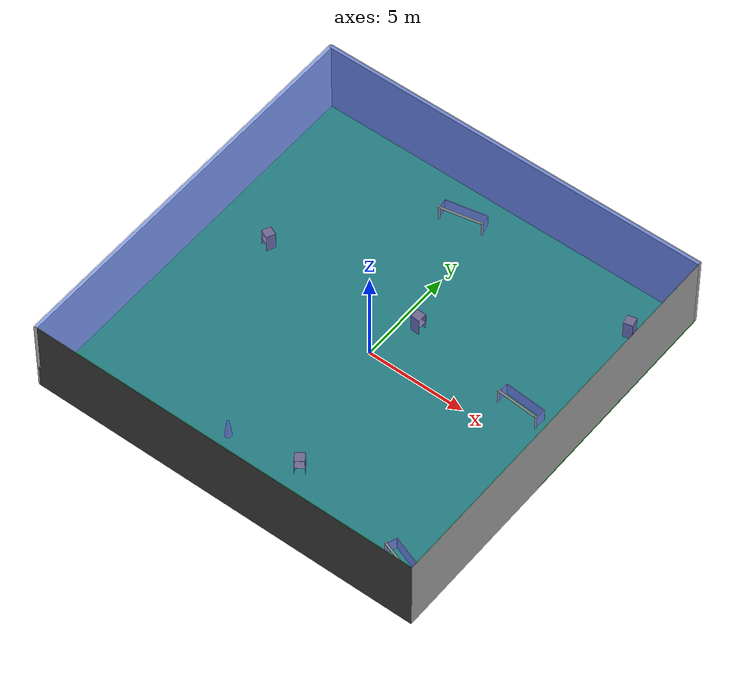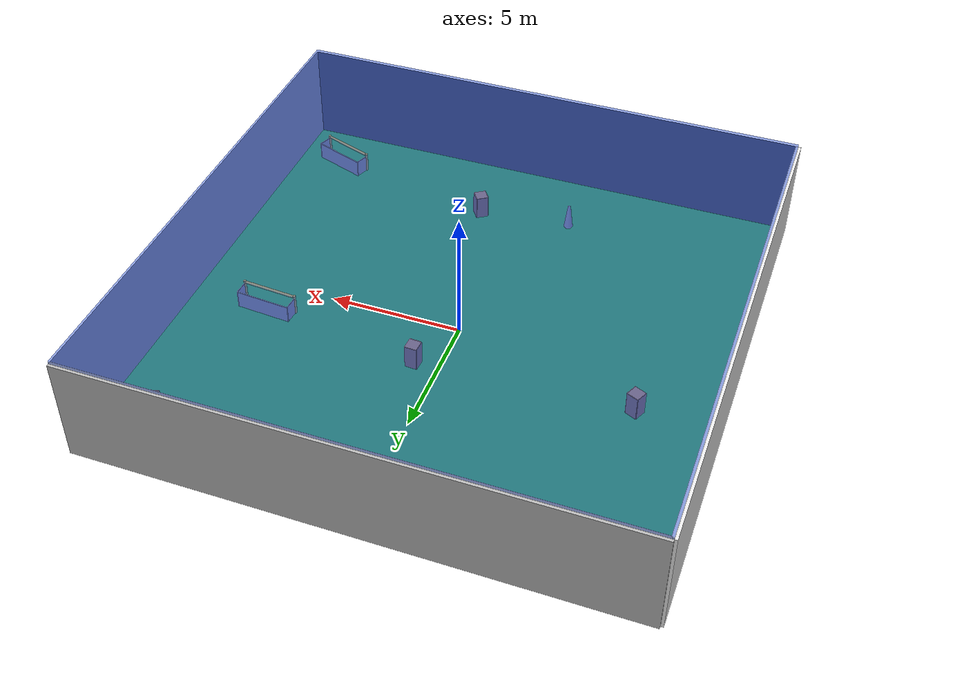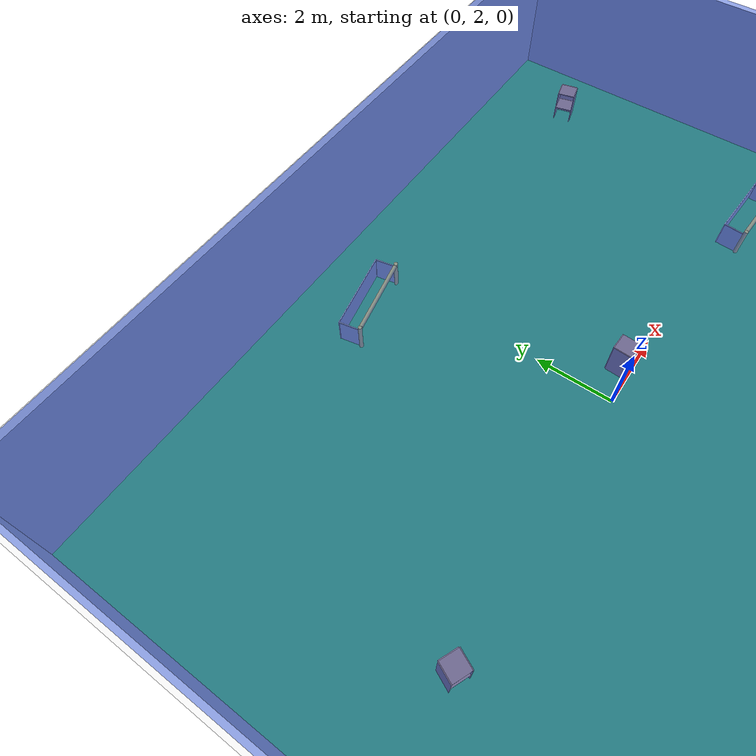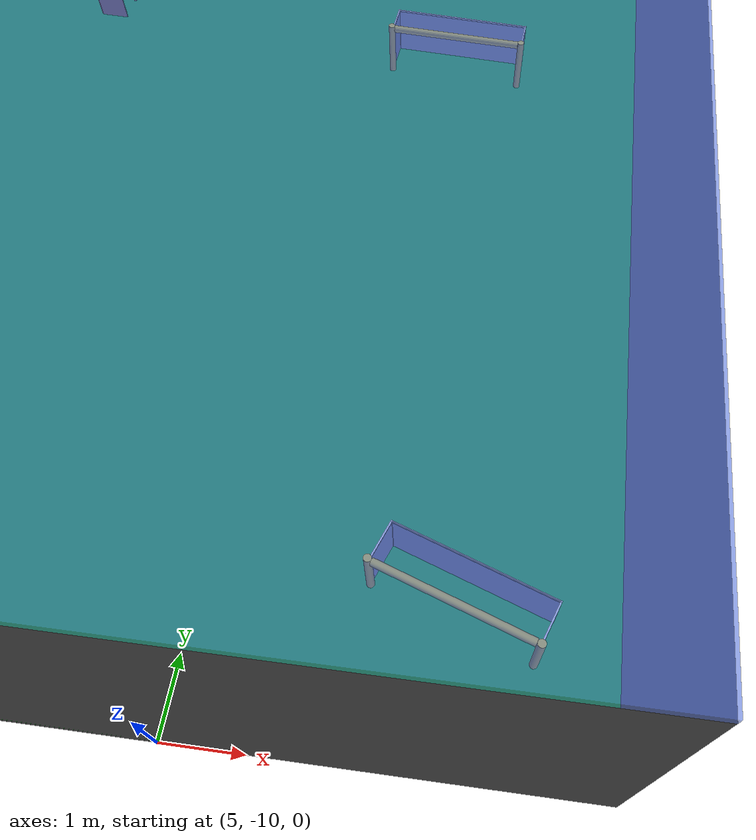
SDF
<sdf version="1.4">
 <world name="default">
  <physics type="ode">
   <max_step_size>0.001</max_step_size>
   <real_time_factor>1</real_time_factor>
   <real_time_update_rate>1000</real_time_update_rate>
   <gravity>0 0 -9.8</gravity>
  </physics>
  <scene><ambient>0.4 0.4 0.4 1</ambient><background>0.7 0.7 0.7 1</background><shadows>1</shadows></scene>
  <model name="Surrounding">
   <static>1</static>
   <link name="Ceiling">
    <collision name="Ceiling_Collision"><geometry><box><size>20 20 0.1</size></box></geometry></collision>
    <visual name="Ceiling_Visual">
     <geometry><box><size>20 20 0.1</size></box></geometry>
     <material>
      <script><uri>file://media/materials/scripts/gazebo.material</uri><name>Gazebo/BlueTransparent</name></script>
     </material>
    </visual>
    <pose>0 0 4.05 0 0 0</pose>
   </link>
   <link name="Wall_South">
    <collision name="Wall_South_Collision">
     <geometry><box><size>20 0 4</size></box></geometry>
     <pose>0 0 2 0 -0 0</pose>
    </collision>
    <visual name="Wall_South_Visual">
     <pose>0 0 2 0 -0 0</pose>
     <geometry><box><size>20 0 4</size></box></geometry>
     <material>
      <script><uri>file://media/materials/scripts/gazebo.material</uri><name>Gazebo/DarkGrey</name></script>
     </material>
    </visual>
    <velocity_decay><linear>0</linear><angular>0</angular></velocity_decay>
    <pose>0 -10 0 0 -0 0</pose>
   </link>
   <link name="Wall_East">
    <collision name="Wall_21_Collision">
     <geometry><box><size>20 0 4</size></box></geometry>
     <pose>0 0 2 0 -0 0</pose>
    </collision>
    <visual name="Wall_21_Visual">
     <pose>0 0 2 0 -0 0</pose>
     <geometry><box><size>20 0 4</size></box></geometry>
     <material>
      <script><uri>file://media/materials/scripts/gazebo.material</uri><name>Gazebo/Pioneer2Body</name></script>
     </material>
    </visual>
    <velocity_decay><linear>0</linear><angular>0</angular></velocity_decay>
    <pose>10 0 0 0 -0 1.5708</pose>
   </link>
   <link name="Wall_North">
    <collision name="Wall_22_Collision">
     <geometry><box><size>20 0.2 4</size></box></geometry>
     <pose>0 0 2 0 -0 0</pose>
    </collision>
    <visual name="Wall_22_Visual">
     <pose>0 0 2 0 -0 0</pose>
     <geometry><box><size>20 0.2 4</size></box></geometry>
     <material>
      <script><uri>file://media/materials/scripts/gazebo.material</uri><name>Gazebo/JointAnchor</name></script>
     </material>
    </visual>
    <velocity_decay><linear>0</linear><angular>0</angular></velocity_decay>
    <pose>0 10 0 0 -0 0</pose>
   </link>
   <link name="Wall_West">
    <collision name="Wall_23_Collision">
     <geometry><box><size>20 0.2 4</size></box></geometry>
     <pose>0 0 2 0 -0 0</pose>
    </collision>
    <visual name="Wall_23_Visual">
     <pose>0 0 2 0 -0 0</pose>
     <geometry><box><size>20 0.2 4</size></box></geometry>
     <material>
      <script><uri>file://media/materials/scripts/gazebo.material</uri><name>Gazebo/White</name></script>
     </material>
    </visual>
    <velocity_decay><linear>0</linear><angular>0</angular></velocity_decay>
    <pose>-10 0 0 0 0 -1.5708</pose>
   </link>
   <link name="Ground_link">
    <collision name="collision">
     <pose>0 0 .05 0 -0 0</pose>
     <geometry><box><size>20 20 0.1</size></box></geometry>
    </collision>
    <visual name="visual">
     <pose>0 0 .05 0 -0 0</pose>
     <geometry><box><size>20 20 0.1</size></box></geometry>
     <material>
      <script><uri>file://media/materials/scripts/gazebo.material</uri><name>Gazebo/Green</name></script>
     </material>
    </visual>
   </link>
   <static>1</static>
  </model>
  <spherical_coordinates>
   <surface_model>EARTH_WGS84</surface_model>
   <latitude_deg>0</latitude_deg>
   <longitude_deg>0</longitude_deg>
   <elevation>0</elevation>
   <heading_deg>0</heading_deg>
  </spherical_coordinates>
  <light name="lightball_0" type="diffuse">
   <diffuse>0.8 0.8 0.8 1</diffuse>
   <specular>0.2 0.2 0.2 1</specular>
   <attenuation>
    <range>100</range>
    <constant>0.7</constant>
    <linear>0.01</linear>
    <quadratic>0.001</quadratic>
   </attenuation>
   <direction>-0.5 0.1 -0.9</direction>
   <pose>-0.653390411847 5.2201653458 1.72201596063 0 0 0</pose>
  </light>
  <light name="lightball_1" type="diffuse">
   <diffuse>0.8 0.8 0.8 1</diffuse>
   <specular>0.2 0.2 0.2 1</specular>
   <attenuation>
    <range>100</range>
    <constant>0.7</constant>
    <linear>0.01</linear>
    <quadratic>0.001</quadratic>
   </attenuation>
   <direction>-0.5 0.1 -0.9</direction>
   <pose>6.70211199674 -1.42293500251 3.33897687136 0 0 0</pose>
  </light>
  <light name="lightball_2" type="diffuse">
   <diffuse>0.8 0.8 0.8 1</diffuse>
   <specular>0.2 0.2 0.2 1</specular>
   <attenuation>
    <range>100</range>
    <constant>0.7</constant>
    <linear>0.01</linear>
    <quadratic>0.001</quadratic>
   </attenuation>
   <direction>-0.5 0.1 -0.9</direction>
   <pose>-7.46891011723 8.26719841564 2.37260738618 0 0 0</pose>
  </light>
  <light name="lightball_3" type="diffuse">
   <diffuse>0.8 0.8 0.8 1</diffuse>
   <specular>0.2 0.2 0.2 1</specular>
   <attenuation>
    <range>100</range>
    <constant>0.7</constant>
    <linear>0.01</linear>
    <quadratic>0.001</quadratic>
   </attenuation>
   <direction>-0.5 0.1 -0.9</direction>
   <pose>-7.16011681598 4.49630505696 2.70316518009 0 0 0</pose>
  </light>
  <light name="lightball_4" type="diffuse">
   <diffuse>0.8 0.8 0.8 1</diffuse>
   <specular>0.2 0.2 0.2 1</specular>
   <attenuation>
    <range>100</range>
    <constant>0.7</constant>
    <linear>0.01</linear>
    <quadratic>0.001</quadratic>
   </attenuation>
   <direction>-0.5 0.1 -0.9</direction>
   <pose>-6.29234881258 -8.52376289557 3.11292873382 0 0 0</pose>
  </light>
  <include><uri>model://cabinet</uri><pose>-7.07971122715 1.90193218274 0 0 0 1.14541762377</pose></include>
  <include>
   <uri>model://construction_cone</uri>
   <pose>-1.96962829747 -7.16882373412 0 0 0 2.98884044097</pose>
  </include>
  <include>
   <uri>model://robocup_3Dsim_goal</uri>
   <pose>-1.13635631575 7.9180604141 0 0 0 1.76708629747</pose>
  </include>
  <include><uri>model://cabinet</uri><pose>1.56677903358 -6.74540952545 0 0 0 2.17697087411</pose></include>
  <include><uri>model://cabinet</uri><pose>0.879747088846 2.28489609496 0 0 0 3.08758170439</pose></include>
  <include>
   <uri>model://robocup_3Dsim_goal</uri>
   <pose>8.02318197095 -8.26397250188 0 0 0 1.22506027186</pose>
  </include>
  <include>
   <uri>model://robocup_3Dsim_goal</uri>
   <pose>6.99758600207 1.19434355625 0 0 0 1.49651116041</pose>
  </include>
  <include><uri>model://cabinet</uri><pose>8.19816455632 7.65304957554 0 0 0 0.236637398405</pose></include>
 </world>
</sdf>

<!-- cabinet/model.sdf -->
<sdf version="1.5">
  <model name="cabinet">
    <static>true</static>
    <link name="cabinet_bottom_plate">
      <inertial>
        <pose>0 0 -1 0 0 0</pose>
        <inertia>
          <ixx>2.050000</ixx>
          <ixy>0</ixy>
          <ixz>0</ixz>
          <iyy>2.050000</iyy>
          <iyz>0</iyz>
          <izz>2.050000</izz>
        </inertia>
        <mass>25.000000</mass>
      </inertial>
      <collision name="cabinet_bottom_plate_geom">
        <pose>0 0 0.010000 0 0 0</pose>
        <geometry>
          <box>
            <size>0.450000 0.450000 0.020000</size>
          </box>
        </geometry>
      </collision>
      <visual name="cabinet_bottom_plate_geom_visual">
        <pose>0 0 0.010000 0 0 0</pose>
        <geometry>
          <box>
            <size>0.450000 0.450000 0.020000</size>
          </box>
        </geometry>
        <material>
          <script>
            <uri>model://media/materials/scripts/gazebo.material</uri>
            <name>Gazebo/Wood</name>
          </script>
        </material>
      </visual>
      <collision name="cabinet_bottom_plate_geom_cabinet_back_plate">
        <pose>0.235000 0 0.510000 0 0 0</pose>
        <geometry>
          <box>
            <size>0.020000 0.450000 1.020000</size>
          </box>
        </geometry>
      </collision>
      <visual name="cabinet_bottom_plate_geom_cabinet_back_plate_visual">
        <pose>0.235000 0 0.510000 0 0 0</pose>
        <geometry>
          <box>
            <size>0.020000 0.450000 1.020000</size>
          </box>
        </geometry>
        <material>
          <script>
            <uri>model://media/materials/scripts/gazebo.material</uri>
            <name>Gazebo/Wood</name>
          </script>
        </material>
      </visual>
      <collision name="cabinet_bottom_plate_geom_cabinet_left_plate">
        <pose>0 0.235000 0.510000 0 0 0</pose>
        <geometry>
          <box>
            <size>0.450000 0.020000 1.020000</size>
          </box>
        </geometry>
      </collision>
      <visual name="cabinet_bottom_plate_geom_cabinet_left_plate_visual">
        <pose>0 0.235000 0.510000 0 0 0</pose>
        <geometry>
          <box>
            <size>0.450000 0.020000 1.020000</size>
          </box>
        </geometry>
        <material>
          <script>
            <uri>model://media/materials/scripts/gazebo.material</uri>
            <name>Gazebo/Wood</name>
          </script>
        </material>
      </visual>
      <collision name="cabinet_bottom_plate_geom_cabinet_middle_plate">
        <pose>0 0 0.510000 0 0 0</pose>
        <geometry>
          <box>
            <size>0.450000 0.450000 0.020000</size>
          </box>
        </geometry>
      </collision>
      <visual name="cabinet_bottom_plate_geom_cabinet_middle_plate_visual">
        <pose>0 0 0.510000 0 0 0</pose>
        <geometry>
          <box>
            <size>0.450000 0.450000 0.020000</size>
          </box>
        </geometry>
        <material>
          <script>
            <uri>model://media/materials/scripts/gazebo.material</uri>
            <name>Gazebo/Wood</name>
          </script>
        </material>
      </visual>
      <collision name="cabinet_bottom_plate_geom_cabinet_right_plate">
        <pose>0 -0.235000 0.510000 0 0 0</pose>
        <geometry>
          <box>
            <size>0.450000 0.020000 1.020000</size>
          </box>
        </geometry>
      </collision>
      <visual name="cabinet_bottom_plate_geom_cabinet_right_plate_visual">
        <pose>0 -0.235000 0.510000 0 0 0</pose>
        <geometry>
          <box>
            <size>0.450000 0.020000 1.020000</size>
          </box>
        </geometry>
        <material>
          <script>
            <uri>model://media/materials/scripts/gazebo.material</uri>
            <name>Gazebo/Wood</name>
          </script>
        </material>
      </visual>
      <collision name="cabinet_bottom_plate_geom_cabinet_top_plate">
        <pose>0 0 1.010000 0 0 0</pose>
        <geometry>
          <box>
            <size>0.450000 0.450000 0.020000</size>
          </box>
        </geometry>
      </collision>
      <visual name="cabinet_bottom_plate_geom_cabinet_top_plate_visual">
        <pose>0 0 1.010000 0 0 0</pose>
        <geometry>
          <box>
            <size>0.450000 0.450000 0.020000</size>
          </box>
        </geometry>
        <material>
          <script>
            <uri>model://media/materials/scripts/gazebo.material</uri>
            <name>Gazebo/Wood</name>
          </script>
        </material>
      </visual>
    </link>
  </model>
</sdf>

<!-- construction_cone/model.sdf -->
<sdf version="1.5">
  <model name="Construction Cone">
    <link name="link">
      <collision name="collision">
        <geometry>
          <mesh>
            <scale>10 10 10</scale>
            <uri>file://isr-testbed/construction_cone/meshes/construction_cone.dae</uri>
          </mesh>
        </geometry>
      </collision>
      <visual name="visual">
        <geometry>
          <mesh>
            <scale>10 10 10</scale>
            <uri>file://isr-testbed/construction_cone/meshes/construction_cone.dae</uri>
          </mesh>
        </geometry>
      </visual>
    </link>
  </model>
</sdf>

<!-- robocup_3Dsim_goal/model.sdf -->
<sdf version="1.5">
  <model name="robocup_3d_goal">
    <static>true</static>
    <link name="left_post">
      <pose>0 1.05 0.45 0 0 0</pose>
      <collision name="collision">
        <geometry>
          <cylinder>
            <radius>0.05</radius>
            <length>0.9</length>
          </cylinder>
        </geometry>
      </collision>
      <visual name="visual">
        <geometry>
          <cylinder>
            <radius>0.05</radius>
            <length>0.9</length>
          </cylinder>
        </geometry>
        <material>
          <script>
            <uri>file://media/materials/scripts/gazebo.material</uri>
            <name>Gazebo/ZincYellow</name>
          </script>
        </material>
      </visual>
    </link>
    <link name="left_support_horiz_lower">
      <pose>0.30 1.05 0.01 0 0 0</pose>
      <collision name="collision">
        <geometry>
          <box>
            <size>0.50 0.02 0.02</size>
          </box>
        </geometry>
      </collision>
      <visual name="visual">
        <geometry>
          <box>
            <size>0.50 0.02 0.02</size>
          </box>
        </geometry>
        <material>
          <script>
            <uri>file://media/materials/scripts/gazebo.material</uri>
            <name>Gazebo/White</name>
          </script>
        </material>
      </visual>
    </link>
    <link name="left_support_horiz_upper">
      <pose>0.30 1.05 0.79 0 0 0</pose>
      <collision name="collision">
        <geometry>
          <box>
            <size>0.50 0.02 0.02</size>
          </box>
        </geometry>
      </collision>
      <visual name="visual">
        <geometry>
          <box>
            <size>0.50 0.02 0.02</size>
          </box>
        </geometry>
        <material>
          <script>
            <uri>file://media/materials/scripts/gazebo.material</uri>
            <name>Gazebo/White</name>
          </script>
        </material>
      </visual>
    </link>
    <link name="left_support_vertical">
      <pose>0.56 1.05 0.4 0 1.5708 0</pose>
      <collision name="collision">
        <geometry>
          <box>
            <size>0.80 0.02 0.02</size>
          </box>
        </geometry>
      </collision>
      <visual name="visual">
        <geometry>
          <box>
            <size>0.80 0.02 0.02</size>
          </box>
        </geometry>
        <material>
          <script>
            <uri>file://media/materials/scripts/gazebo.material</uri>
            <name>Gazebo/White</name>
          </script>
        </material>
      </visual>
    </link>
    <link name="right_support_horiz_lower">
      <pose>0.30 -1.05 0.01 0 0 0</pose>
      <collision name="collision">
        <geometry>
          <box>
            <size>0.50 0.02 0.02</size>
          </box>
        </geometry>
      </collision>
      <visual name="visual">
        <geometry>
          <box>
            <size>0.50 0.02 0.02</size>
          </box>
        </geometry>
        <material>
          <script>
            <uri>file://media/materials/scripts/gazebo.material</uri>
            <name>Gazebo/White</name>
          </script>
        </material>
      </visual>
    </link>
    <link name="right_support_horiz_upper">
      <pose>0.30 -1.05 0.79 0 0 0</pose>
      <collision name="collision">
        <geometry>
          <box>
            <size>0.50 0.02 0.02</size>
          </box>
        </geometry>
      </collision>
      <visual name="visual">
        <geometry>
          <box>
            <size>0.50 0.02 0.02</size>
          </box>
        </geometry>
        <material>
          <script>
            <uri>file://media/materials/scripts/gazebo.material</uri>
            <name>Gazebo/White</name>
          </script>
        </material>
      </visual>
    </link>
    <link name="right_support_vertical">
      <pose>0.56 -1.05 0.4 0 1.5708 0</pose>
      <collision name="collision">
        <geometry>
          <box>
            <size>0.80 0.02 0.02</size>
          </box>
        </geometry>
      </collision>
      <visual name="visual">
        <geometry>
          <box>
            <size>0.80 0.02 0.02</size>
          </box>
        </geometry>
        <material>
          <script>
            <uri>file://media/materials/scripts/gazebo.material</uri>
            <name>Gazebo/White</name>
          </script>
        </material>
      </visual>
    </link>
    <link name="center_support_horiz_lower">
      <pose>0.56 0 0.01 0 1.5708 0</pose>
      <collision name="collision">
        <geometry>
          <box>
            <size>0.02 2.08 0.02</size>
          </box>
        </geometry>
      </collision>
      <visual name="visual">
        <geometry>
          <box>
            <size>0.02 2.08 0.02</size>
          </box>
        </geometry>
        <material>
          <script>
            <uri>file://media/materials/scripts/gazebo.material</uri>
            <name>Gazebo/White</name>
          </script>
        </material>
      </visual>
    </link>
    <link name="center_support_horiz_upper">
      <pose>0.56 0 0.79 0 1.5708 0</pose>
      <collision name="collision">
        <geometry>
          <box>
            <size>0.02 2.08 0.02</size>
          </box>
        </geometry>
      </collision>
      <visual name="visual">
        <geometry>
          <box>
            <size>0.02 2.08 0.02</size>
          </box>
        </geometry>
        <material>
          <script>
            <uri>file://media/materials/scripts/gazebo.material</uri>
            <name>Gazebo/White</name>
          </script>
        </material>
      </visual>
    </link>
    <link name="right_post">
      <pose>0 -1.05 0.45 0 0 0</pose>
      <collision name="collision">
        <geometry>
          <cylinder>
            <radius>0.05</radius>
            <length>0.9</length>
          </cylinder>
        </geometry>
      </collision>
      <visual name="visual">
        <geometry>
          <cylinder>
            <radius>0.05</radius>
            <length>0.9</length>
          </cylinder>
        </geometry>
        <material>
          <script>
            <uri>file://media/materials/scripts/gazebo.material</uri>
            <name>Gazebo/ZincYellow</name>
          </script>
        </material>
      </visual>
    </link>
    <link name="crossbar">
      <pose>0 0 0.85 1.57 1.57 0</pose>
      <collision name="collision">
        <geometry>
          <cylinder>
            <radius>0.05</radius>
            <length>2.0</length>
          </cylinder>
        </geometry>
      </collision>
      <visual name="visual">
        <geometry>
          <cylinder>
            <radius>0.05</radius>
            <length>2.0</length>
          </cylinder>
        </geometry>
        <material>
          <script>
            <uri>file://media/materials/scripts/gazebo.material</uri>
            <name>Gazebo/ZincYellow</name>
          </script>
        </material>
      </visual>
    </link>
    <link name="center_net">
      <pose>0.56 0 0.40 0 0 0</pose>
      <collision name="collision">
        <geometry>
          <box>
            <size>0.01 2.1 0.80</size>
          </box>
        </geometry>
      </collision>
      <visual name="visual">
        <geometry>
          <box>
            <size>0.01 2.1 0.80</size>
          </box>
        </geometry>
        <material>
          <script>
            <uri>model://../model_source/models/robocup09_spl_field/materials/scripts/</uri>
            <uri>model://../model_source/models/robocup09_spl_field/materials/textures/</uri>
            <name>RoboCup/Net</name>
          </script>
        </material>
      </visual>
    </link>
    <link name="left_net">
      <pose>0.30 1.05 0.40 0 0 0</pose>
      <collision name="collision">
        <geometry>
          <box>
            <size>0.50 0.01 0.76</size>
          </box>
        </geometry>
      </collision>
      <visual name="visual">
        <geometry>
          <box>
            <size>0.50 0.01 0.76</size>
          </box>
        </geometry>
        <material>
          <script>
            <uri>model://../model_source/models/robocup09_spl_field/materials/scripts/</uri>
            <uri>model://../model_source/models/robocup09_spl_field/materials/textures/</uri>
            <name>RoboCup/Net</name>
          </script>
        </material>
      </visual>
    </link>
    <link name="right_net">
      <pose>0.30 -1.05 0.40 0 0 0</pose>
      <collision name="collision">
        <geometry>
          <box>
            <size>0.50 0.01 0.76</size>
          </box>
        </geometry>
      </collision>
      <visual name="visual">
        <geometry>
          <box>
            <size>0.50 0.01 0.76</size>
          </box>
        </geometry>
        <material>
          <script>
            <uri>model://../model_source/models/robocup09_spl_field/materials/scripts/</uri>
            <uri>model://../model_source/models/robocup09_spl_field/materials/textures/</uri>
            <name>RoboCup/Net</name>
          </script>
        </material>
      </visual>
    </link>
  </model>
</sdf>
